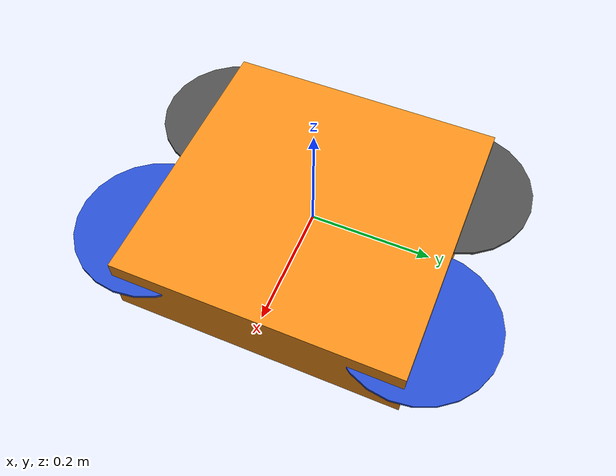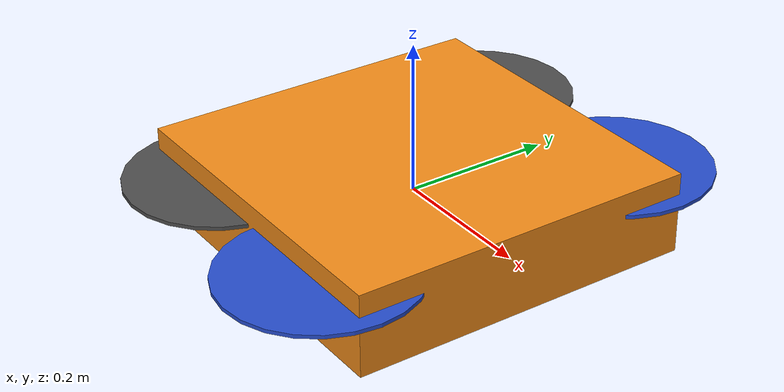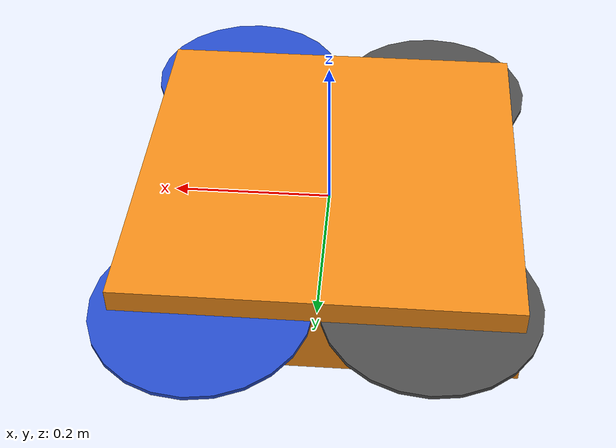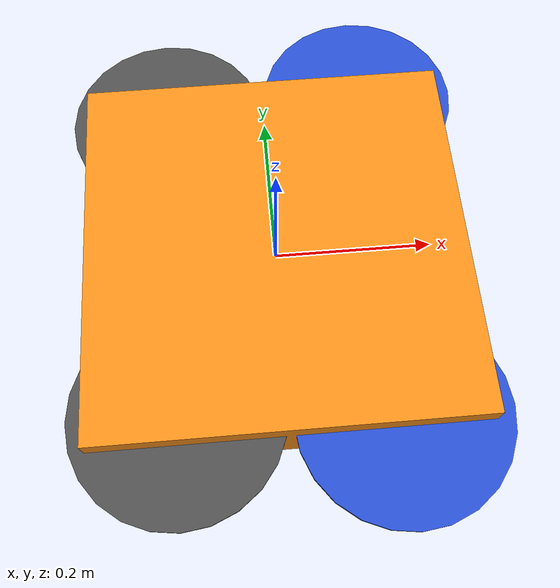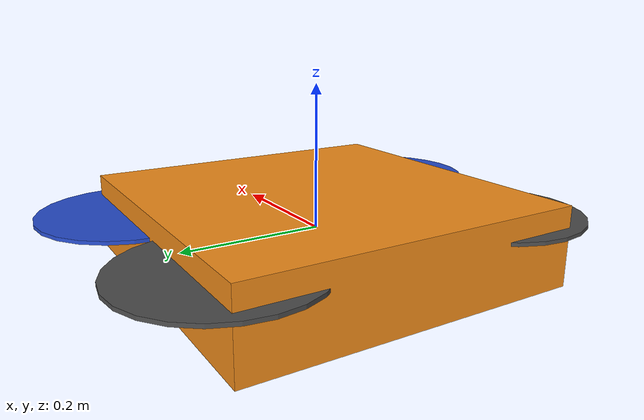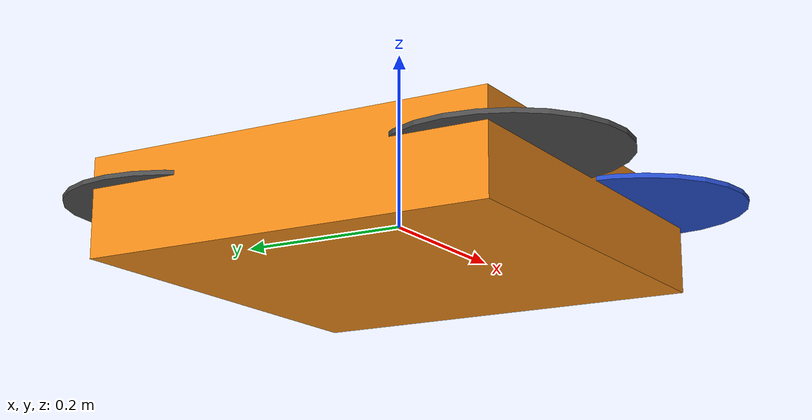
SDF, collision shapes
<sdf version='1.6'>
  <model name='iris'>
    <link name='base_link'>
      <pose frame=''>0 0 0 0 -0 0</pose>
      <inertial>
        <pose frame=''>0 0 0 0 -0 0</pose>
        <mass>1.5</mass>
        <inertia>
          <ixx>0.029125</ixx>
          <ixy>0</ixy>
          <ixz>0</ixz>
          <iyy>0.029125</iyy>
          <iyz>0</iyz>
          <izz>0.055225</izz>
        </inertia>
      </inertial>
      <collision name='base_link_inertia_collision'>
        <pose frame=''>0 0 0 0 -0 0</pose>
        <geometry>
          <box>
            <size>0.47 0.47 0.11</size>
          </box>
        </geometry>
        <surface>
          <contact>
            <ode>
              <min_depth>0.001</min_depth>
              <max_vel>0</max_vel>
            </ode>
          </contact>
          <friction>
            <ode/>
          </friction>
        </surface>
      </collision>
      <visual name='base_link_inertia_visual'>
        <pose frame=''>0 0 0 0 -0 0</pose>
        <geometry>
          <mesh>
            <scale>1 1 1</scale>
            <uri>model://rotors_description/meshes/iris.stl</uri>
          </mesh>
        </geometry>
        <material>
          <script>
            <name>Gazebo/Orange</name>
            <uri>file://media/materials/scripts/gazebo.material</uri>
          </script>
        </material>
      </visual>
      <gravity>1</gravity>
      <velocity_decay/>
    </link>
    <link name='/imu_link'>
      <pose frame=''>0 0 0 0 -0 0</pose>
      <inertial>
        <pose frame=''>0 0 0 0 -0 0</pose>
        <mass>0.015</mass>
        <inertia>
          <ixx>1e-05</ixx>
          <ixy>0</ixy>
          <ixz>0</ixz>
          <iyy>1e-05</iyy>
          <iyz>0</iyz>
          <izz>1e-05</izz>
        </inertia>
      </inertial>
    </link>
    <joint name='/imu_joint' type='revolute'>
      <child>/imu_link</child>
      <parent>base_link</parent>
      <axis>
        <xyz>1 0 0</xyz>
        <limit>
          <lower>0</lower>
          <upper>0</upper>
          <effort>0</effort>
          <velocity>0</velocity>
        </limit>
        <dynamics>
          <spring_reference>0</spring_reference>
          <spring_stiffness>0</spring_stiffness>
        </dynamics>
        <use_parent_model_frame>1</use_parent_model_frame>
      </axis>
    </joint>
    <link name='rotor_0'>
      <pose frame=''>0.13 -0.22 0.023 0 -0 0</pose>
      <inertial>
        <pose frame=''>0 0 0 0 -0 0</pose>
        <mass>0.005</mass>
        <inertia>
          <ixx>9.75e-07</ixx>
          <ixy>0</ixy>
          <ixz>0</ixz>
          <iyy>0.000273104</iyy>
          <iyz>0</iyz>
          <izz>0.000274004</izz>
        </inertia>
      </inertial>
      <collision name='rotor_0_collision'>
        <pose frame=''>0 0 0 0 -0 0</pose>
        <geometry>
          <cylinder>
            <length>0.005</length>
            <radius>0.128</radius>
          </cylinder>
        </geometry>
        <surface>
          <contact>
            <ode/>
          </contact>
          <friction>
            <ode/>
          </friction>
        </surface>
      </collision>
      <visual name='rotor_0_visual'>
        <pose frame=''>0 0 0 0 -0 0</pose>
        <geometry>
          <mesh>
            <scale>1 1 1</scale>
            <uri>model://rotors_description/meshes/iris_prop_ccw.dae</uri>
          </mesh>
        </geometry>
        <material>
          <script>
            <name>Gazebo/Blue</name>
            <uri>file://media/materials/scripts/gazebo.material</uri>
          </script>
        </material>
      </visual>
      <gravity>1</gravity>
      <velocity_decay/>
    </link>
    <joint name='rotor_0_joint' type='revolute'>
      <child>rotor_0</child>
      <parent>base_link</parent>
      <axis>
        <xyz>0 0 1</xyz>
        <limit>
          <lower>-1e+16</lower>
          <upper>1e+16</upper>
        </limit>
        <dynamics>
          <spring_reference>0</spring_reference>
          <spring_stiffness>0</spring_stiffness>
        </dynamics>
        <use_parent_model_frame>1</use_parent_model_frame>
      </axis>
    </joint>
    <link name='rotor_1'>
      <pose frame=''>-0.13 0.2 0.023 0 -0 0</pose>
      <inertial>
        <pose frame=''>0 0 0 0 -0 0</pose>
        <mass>0.005</mass>
        <inertia>
          <ixx>9.75e-07</ixx>
          <ixy>0</ixy>
          <ixz>0</ixz>
          <iyy>0.000273104</iyy>
          <iyz>0</iyz>
          <izz>0.000274004</izz>
        </inertia>
      </inertial>
      <collision name='rotor_1_collision'>
        <pose frame=''>0 0 0 0 -0 0</pose>
        <geometry>
          <cylinder>
            <length>0.005</length>
            <radius>0.128</radius>
          </cylinder>
        </geometry>
        <surface>
          <contact>
            <ode/>
          </contact>
          <friction>
            <ode/>
          </friction>
        </surface>
      </collision>
      <visual name='rotor_1_visual'>
        <pose frame=''>0 0 0 0 -0 0</pose>
        <geometry>
          <mesh>
            <scale>1 1 1</scale>
            <uri>model://rotors_description/meshes/iris_prop_ccw.dae</uri>
          </mesh>
        </geometry>
        <material>
          <script>
            <name>Gazebo/DarkGrey</name>
            <uri>file://media/materials/scripts/gazebo.material</uri>
          </script>
        </material>
      </visual>
      <gravity>1</gravity>
      <velocity_decay/>
    </link>
    <joint name='rotor_1_joint' type='revolute'>
      <child>rotor_1</child>
      <parent>base_link</parent>
      <axis>
        <xyz>0 0 1</xyz>
        <limit>
          <lower>-1e+16</lower>
          <upper>1e+16</upper>
        </limit>
        <dynamics>
          <spring_reference>0</spring_reference>
          <spring_stiffness>0</spring_stiffness>
        </dynamics>
        <use_parent_model_frame>1</use_parent_model_frame>
      </axis>
    </joint>
    <link name='rotor_2'>
      <pose frame=''>0.13 0.22 0.023 0 -0 0</pose>
      <inertial>
        <pose frame=''>0 0 0 0 -0 0</pose>
        <mass>0.005</mass>
        <inertia>
          <ixx>9.75e-07</ixx>
          <ixy>0</ixy>
          <ixz>0</ixz>
          <iyy>0.000273104</iyy>
          <iyz>0</iyz>
          <izz>0.000274004</izz>
        </inertia>
      </inertial>
      <collision name='rotor_2_collision'>
        <pose frame=''>0 0 0 0 -0 0</pose>
        <geometry>
          <cylinder>
            <length>0.005</length>
            <radius>0.128</radius>
          </cylinder>
        </geometry>
        <surface>
          <contact>
            <ode/>
          </contact>
          <friction>
            <ode/>
          </friction>
        </surface>
      </collision>
      <visual name='rotor_2_visual'>
        <pose frame=''>0 0 0 0 -0 0</pose>
        <geometry>
          <mesh>
            <scale>1 1 1</scale>
            <uri>model://rotors_description/meshes/iris_prop_cw.dae</uri>
          </mesh>
        </geometry>
        <material>
          <script>
            <name>Gazebo/Blue</name>
            <uri>file://media/materials/scripts/gazebo.material</uri>
          </script>
        </material>
      </visual>
      <gravity>1</gravity>
      <velocity_decay/>
    </link>
    <joint name='rotor_2_joint' type='revolute'>
      <child>rotor_2</child>
      <parent>base_link</parent>
      <axis>
        <xyz>0 0 1</xyz>
        <limit>
          <lower>-1e+16</lower>
          <upper>1e+16</upper>
        </limit>
        <dynamics>
          <spring_reference>0</spring_reference>
          <spring_stiffness>0</spring_stiffness>
        </dynamics>
        <use_parent_model_frame>1</use_parent_model_frame>
      </axis>
    </joint>
    <link name='rotor_3'>
      <pose frame=''>-0.13 -0.2 0.023 0 -0 0</pose>
      <inertial>
        <pose frame=''>0 0 0 0 -0 0</pose>
        <mass>0.005</mass>
        <inertia>
          <ixx>9.75e-07</ixx>
          <ixy>0</ixy>
          <ixz>0</ixz>
          <iyy>0.000273104</iyy>
          <iyz>0</iyz>
          <izz>0.000274004</izz>
        </inertia>
      </inertial>
      <collision name='rotor_3_collision'>
        <pose frame=''>0 0 0 0 -0 0</pose>
        <geometry>
          <cylinder>
            <length>0.005</length>
            <radius>0.128</radius>
          </cylinder>
        </geometry>
        <surface>
          <contact>
            <ode/>
          </contact>
          <friction>
            <ode/>
          </friction>
        </surface>
      </collision>
      <visual name='rotor_3_visual'>
        <pose frame=''>0 0 0 0 -0 0</pose>
        <geometry>
          <mesh>
            <scale>1 1 1</scale>
            <uri>model://rotors_description/meshes/iris_prop_cw.dae</uri>
          </mesh>
        </geometry>
        <material>
          <script>
            <name>Gazebo/DarkGrey</name>
            <uri>file://media/materials/scripts/gazebo.material</uri>
          </script>
        </material>
      </visual>
      <gravity>1</gravity>
      <velocity_decay/>
    </link>
    <joint name='rotor_3_joint' type='revolute'>
      <child>rotor_3</child>
      <parent>base_link</parent>
      <axis>
        <xyz>0 0 1</xyz>
        <limit>
          <lower>-1e+16</lower>
          <upper>1e+16</upper>
        </limit>
        <dynamics>
          <spring_reference>0</spring_reference>
          <spring_stiffness>0</spring_stiffness>
        </dynamics>
        <use_parent_model_frame>1</use_parent_model_frame>
      </axis>
    </joint>
    <plugin name='rosbag' filename='libgazebo_multirotor_base_plugin.so'>
      <robotNamespace/>
      <linkName>base_link</linkName>
      <rotorVelocitySlowdownSim>10</rotorVelocitySlowdownSim>
    </plugin>
    <plugin name='front_right_motor_model' filename='libgazebo_motor_model.so'>
      <robotNamespace/>
      <jointName>rotor_0_joint</jointName>
      <linkName>rotor_0</linkName>
      <turningDirection>ccw</turningDirection>
      <timeConstantUp>0.0125</timeConstantUp>
      <timeConstantDown>0.025</timeConstantDown>
      <maxRotVelocity>1100</maxRotVelocity>
      <motorConstant>8.54858e-06</motorConstant>
      <momentConstant>0.06</momentConstant>
      <commandSubTopic>/gazebo/command/motor_speed</commandSubTopic>
      <motorNumber>0</motorNumber>
      <rotorDragCoefficient>0.000806428</rotorDragCoefficient>
      <rollingMomentCoefficient>1e-06</rollingMomentCoefficient>
      <motorSpeedPubTopic>/motor_speed/0</motorSpeedPubTopic>
      <rotorVelocitySlowdownSim>10</rotorVelocitySlowdownSim>
    </plugin>
    <plugin name='back_left_motor_model' filename='libgazebo_motor_model.so'>
      <robotNamespace/>
      <jointName>rotor_1_joint</jointName>
      <linkName>rotor_1</linkName>
      <turningDirection>ccw</turningDirection>
      <timeConstantUp>0.0125</timeConstantUp>
      <timeConstantDown>0.025</timeConstantDown>
      <maxRotVelocity>1100</maxRotVelocity>
      <motorConstant>8.54858e-06</motorConstant>
      <momentConstant>0.06</momentConstant>
      <commandSubTopic>/gazebo/command/motor_speed</commandSubTopic>
      <motorNumber>1</motorNumber>
      <rotorDragCoefficient>0.000806428</rotorDragCoefficient>
      <rollingMomentCoefficient>1e-06</rollingMomentCoefficient>
      <motorSpeedPubTopic>/motor_speed/1</motorSpeedPubTopic>
      <rotorVelocitySlowdownSim>10</rotorVelocitySlowdownSim>
    </plugin>
    <plugin name='front_left_motor_model' filename='libgazebo_motor_model.so'>
      <robotNamespace/>
      <jointName>rotor_2_joint</jointName>
      <linkName>rotor_2</linkName>
      <turningDirection>cw</turningDirection>
      <timeConstantUp>0.0125</timeConstantUp>
      <timeConstantDown>0.025</timeConstantDown>
      <maxRotVelocity>1100</maxRotVelocity>
      <motorConstant>8.54858e-06</motorConstant>
      <momentConstant>0.06</momentConstant>
      <commandSubTopic>/gazebo/command/motor_speed</commandSubTopic>
      <motorNumber>2</motorNumber>
      <rotorDragCoefficient>0.000806428</rotorDragCoefficient>
      <rollingMomentCoefficient>1e-06</rollingMomentCoefficient>
      <motorSpeedPubTopic>/motor_speed/2</motorSpeedPubTopic>
      <rotorVelocitySlowdownSim>10</rotorVelocitySlowdownSim>
    </plugin>
    <plugin name='back_right_motor_model' filename='libgazebo_motor_model.so'>
      <robotNamespace/>
      <jointName>rotor_3_joint</jointName>
      <linkName>rotor_3</linkName>
      <turningDirection>cw</turningDirection>
      <timeConstantUp>0.0125</timeConstantUp>
      <timeConstantDown>0.025</timeConstantDown>
      <maxRotVelocity>1100</maxRotVelocity>
      <motorConstant>8.54858e-06</motorConstant>
      <momentConstant>0.06</momentConstant>
      <commandSubTopic>/gazebo/command/motor_speed</commandSubTopic>
      <motorNumber>3</motorNumber>
      <rotorDragCoefficient>0.000806428</rotorDragCoefficient>
      <rollingMomentCoefficient>1e-06</rollingMomentCoefficient>
      <motorSpeedPubTopic>/motor_speed/3</motorSpeedPubTopic>
      <rotorVelocitySlowdownSim>10</rotorVelocitySlowdownSim>
    </plugin>
    <plugin name='gps_plugin' filename='libgazebo_gps_plugin.so'>
      <robotNamespace/>
      <gpsNoise>1</gpsNoise>
    </plugin>
    <plugin name='magnetometer_plugin' filename='libgazebo_magnetometer_plugin.so'>
      <robotNamespace/>
      <pubRate>20</pubRate>
      <noiseDensity>0.0004</noiseDensity>
      <randomWalk>6.4e-06</randomWalk>
      <biasCorrelationTime>600</biasCorrelationTime>
      <magTopic>/mag</magTopic>
    </plugin>
    <plugin name='barometer_plugin' filename='libgazebo_barometer_plugin.so'>
      <robotNamespace/>
      <pubRate>10</pubRate>
      <baroTopic>/baro</baroTopic>
    </plugin>
    <plugin name='mavlink_interface' filename='libgazebo_mavlink_interface.so'>
      <robotNamespace/>
      <imuSubTopic>/imu</imuSubTopic>
      <gpsSubTopic>/gps</gpsSubTopic>
      <magSubTopic>/mag</magSubTopic>
      <baroSubTopic>/baro</baroSubTopic>
      <mavlink_addr>INADDR_ANY</mavlink_addr>
      <mavlink_udp_port>14560</mavlink_udp_port>
      <mavlink_tcp_port>4560</mavlink_tcp_port>
      <serialEnabled>0</serialEnabled>
      <serialDevice>/dev/ttyACM0</serialDevice>
      <baudRate>921600</baudRate>
      <qgc_addr>INADDR_ANY</qgc_addr>
      <qgc_udp_port>14550</qgc_udp_port>
      <sdk_addr>INADDR_ANY</sdk_addr>
      <sdk_udp_port>14540</sdk_udp_port>
      <hil_mode>0</hil_mode>
      <hil_state_level>0</hil_state_level>
      <vehicle_is_tailsitter>0</vehicle_is_tailsitter>
      <send_vision_estimation>1</send_vision_estimation>
      <send_odometry>0</send_odometry>
      <enable_lockstep>1</enable_lockstep>
      <use_tcp>1</use_tcp>
      <motorSpeedCommandPubTopic>/gazebo/command/motor_speed</motorSpeedCommandPubTopic>
      <control_channels>
        <channel name='rotor1'>
          <input_index>0</input_index>
          <input_offset>0</input_offset>
          <input_scaling>1000</input_scaling>
          <zero_position_disarmed>0</zero_position_disarmed>
          <zero_position_armed>100</zero_position_armed>
          <joint_control_type>velocity</joint_control_type>
        </channel>
        <channel name='rotor2'>
          <input_index>1</input_index>
          <input_offset>0</input_offset>
          <input_scaling>1000</input_scaling>
          <zero_position_disarmed>0</zero_position_disarmed>
          <zero_position_armed>100</zero_position_armed>
          <joint_control_type>velocity</joint_control_type>
        </channel>
        <channel name='rotor3'>
          <input_index>2</input_index>
          <input_offset>0</input_offset>
          <input_scaling>1000</input_scaling>
          <zero_position_disarmed>0</zero_position_disarmed>
          <zero_position_armed>100</zero_position_armed>
          <joint_control_type>velocity</joint_control_type>
        </channel>
        <channel name='rotor4'>
          <input_index>3</input_index>
          <input_offset>0</input_offset>
          <input_scaling>1000</input_scaling>
          <zero_position_disarmed>0</zero_position_disarmed>
          <zero_position_armed>100</zero_position_armed>
          <joint_control_type>velocity</joint_control_type>
        </channel>
        <channel name='rotor5'>
          <input_index>4</input_index>
          <input_offset>1</input_offset>
          <input_scaling>324.6</input_scaling>
          <zero_position_disarmed>0</zero_position_disarmed>
          <zero_position_armed>0</zero_position_armed>
          <joint_control_type>velocity</joint_control_type>
          <joint_control_pid>
            <p>0.1</p>
            <i>0</i>
            <d>0</d>
            <iMax>0.0</iMax>
            <iMin>0.0</iMin>
            <cmdMax>2</cmdMax>
            <cmdMin>-2</cmdMin>
          </joint_control_pid>
          <joint_name>zephyr_delta_wing::propeller_joint</joint_name>
        </channel>
        <channel name='rotor6'>
          <input_index>5</input_index>
          <input_offset>0</input_offset>
          <input_scaling>0.524</input_scaling>
          <zero_position_disarmed>0</zero_position_disarmed>
          <zero_position_armed>0</zero_position_armed>
          <joint_control_type>position</joint_control_type>
          <joint_name>zephyr_delta_wing::flap_left_joint</joint_name>
          <joint_control_pid>
            <p>10.0</p>
            <i>0</i>
            <d>0</d>
            <iMax>0</iMax>
            <iMin>0</iMin>
            <cmdMax>20</cmdMax>
            <cmdMin>-20</cmdMin>
          </joint_control_pid>
        </channel>
        <channel name='rotor7'>
          <input_index>6</input_index>
          <input_offset>0</input_offset>
          <input_scaling>0.524</input_scaling>
          <zero_position_disarmed>0</zero_position_disarmed>
          <zero_position_armed>0</zero_position_armed>
          <joint_control_type>position</joint_control_type>
          <joint_name>zephyr_delta_wing::flap_right_joint</joint_name>
          <joint_control_pid>
            <p>10.0</p>
            <i>0</i>
            <d>0</d>
            <iMax>0</iMax>
            <iMin>0</iMin>
            <cmdMax>20</cmdMax>
            <cmdMin>-20</cmdMin>
          </joint_control_pid>
        </channel>
        <channel name='rotor8'>
          <input_index>7</input_index>
          <input_offset>0</input_offset>
          <input_scaling>0.524</input_scaling>
          <zero_position_disarmed>0</zero_position_disarmed>
          <zero_position_armed>0</zero_position_armed>
          <joint_control_type>position</joint_control_type>
        </channel>
      </control_channels>
    </plugin>
    <static>0</static>
    <plugin name='rotors_gazebo_imu_plugin' filename='libgazebo_imu_plugin.so'>
      <robotNamespace/>
      <linkName>/imu_link</linkName>
      <imuTopic>/imu</imuTopic>
      <gyroscopeNoiseDensity>0.0003394</gyroscopeNoiseDensity>
      <gyroscopeRandomWalk>3.8785e-05</gyroscopeRandomWalk>
      <gyroscopeBiasCorrelationTime>1000.0</gyroscopeBiasCorrelationTime>
      <gyroscopeTurnOnBiasSigma>0.0087</gyroscopeTurnOnBiasSigma>
      <accelerometerNoiseDensity>0.004</accelerometerNoiseDensity>
      <accelerometerRandomWalk>0.006</accelerometerRandomWalk>
      <accelerometerBiasCorrelationTime>300.0</accelerometerBiasCorrelationTime>
      <accelerometerTurnOnBiasSigma>0.196</accelerometerTurnOnBiasSigma>
    </plugin>

    <include>
      <uri>model://r200</uri>
      <pose frame=''>0.1 0 0 0 0 0</pose>
    </include>

    <joint name="intel_camera_joint" type="revolute">
      <child>r200::link</child>
      <parent>base_link</parent>
        <axis>
        <xyz>0 0 1</xyz>
        <limit>
          <lower>0</lower>
          <upper>0</upper>
        </limit>
        <use_parent_model_frame>1</use_parent_model_frame>
      </axis>
    </joint>

    <include>
      <uri>model://c920_1</uri>
      <pose>0 0 -0.04 0 1.57 0</pose>
    </include>
    <joint name="c920_1_joint" type="fixed">
      <child>c920_1::link_1</child>
      <parent>base_link</parent>
      <axis>
        <xyz>0 0 1</xyz>
        <limit>
          <upper>0</upper>
          <lower>0</lower>
        </limit>
      </axis>
    </joint>

  </model>
</sdf>

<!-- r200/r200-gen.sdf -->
<sdf version="1.5">

  <model name="r200">

    <link name="link">
    <pose frame=''>0 0 0 0 -0 0</pose>
      <inertial>
        <mass>0.05</mass>
        <inertia>
          <ixx>4.16666666667e-06</ixx>
          <iyy>5.20833333333e-07</iyy>
          <izz>3.85416666667e-06</izz>
        </inertia>
      </inertial>

      <visual name="visual">
      <pose frame=''>0 0 0 0 -0 0</pose>
        <geometry>
          <box>
            <size>0.005 0.03 0.01</size>
          </box>
        </geometry>
      </visual>

      <collision name="collision">
        <geometry>
          <box>
            <size>0.005 0.03 0.01</size>
          </box>
        </geometry>
      </collision>

      <sensor type="depth" name="r200_sensor">
        <always_on>true</always_on>
        <update_rate>3.0</update_rate>
        <visualize>true</visualize>
        <camera name="head">
          <horizontal_fov>1.3962634</horizontal_fov>
          <image>
            <width>640</width>
            <height>480</height>
            <format>R8G8B8</format>
          </image>
          <depth_camera>
            <output>1</output>
          </depth_camera>
          <clip>
            <near>0.02</near>
            <far>300</far>
          </clip>
          <noise>
            <type>gaussian</type>
            <!-- Noise is sampled independently per pixel on each frame.
                 That pixel's noise value is added to each of its color
                 channels, which at that point lie in the range [0,1]. -->
            <mean>0.0</mean>
            <stddev>0.007</stddev>
          </noise>
        </camera>

        <plugin name="r200_controller" filename="libgazebo_ros_openni_kinect.so">
          <robotNamespace/>
          <baseline>0.2</baseline>
          <alwaysOn>true</alwaysOn>
          <updateRate>1.0</updateRate>
          <cameraName>r200_ir</cameraName>
          <frameName>r200</frameName>
          <pointCloudCutoff>0.5</pointCloudCutoff>
          <distortionK1>0.00000001</distortionK1>
          <distortionK2>0.00000001</distortionK2>
          <distortionK3>0.00000001</distortionK3>
          <distortionT1>0.00000001</distortionT1>
          <distortionT2>0.00000001</distortionT2>
          <CxPrime>0</CxPrime>
          <Cx>0</Cx>
          <Cy>0</Cy>
          <focalLength>0</focalLength>
          <hackBaseline>0</hackBaseline>
        </plugin>
        <visualize>true</visualize>
      </sensor>
    </link>
  </model>

</sdf>

<!-- vim: set et ft=xml fenc=utf-8 ff=unix sts=0 sw=2 ts=2 : -->

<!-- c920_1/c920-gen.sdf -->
<sdf version="1.5">

  <model name="c920_1">

    <link name="link_1">

      <inertial>
        <mass>0.05</mass>
        <inertia>
          <ixx>4.16666666667e-06</ixx>
          <iyy>5.20833333333e-07</iyy>
          <izz>3.85416666667e-06</izz>
        </inertia>
      </inertial>

      <visual name="visual">
        <geometry>
          <box>
            <size>0.005 0.03 0.01</size>
          </box>
        </geometry>
      </visual>

      <collision name="collision">
        <geometry>
          <box>
            <size>0.005 0.03 0.01</size>
          </box>
        </geometry>
      </collision>

      <sensor type="camera" name="c920_sensor">
        <always_on>true</always_on>
        <update_rate>30.0</update_rate>
        <camera name="head">
          <horizontal_fov>1.229</horizontal_fov>
          <image>
            <width>1920</width>
            <height>1080</height>
            <format>R8G8B8</format>
          </image>
          <clip>
            <near>0.02</near>
            <far>10</far>
          </clip>
          <lens>
            <type>gnomonical</type>
            <scale_to_hfov>1</scale_to_hfov>
          </lens>
          <noise>
            <type>gaussian</type>
            <!-- Noise is sampled independently per pixel on each frame.
                 That pixel's noise value is added to each of its color
                 channels, which at that point lie in the range [0,1]. -->
            <mean>0.0</mean>
            <stddev>0.007</stddev>
          </noise>
        </camera>
        <plugin name="camera_controller" filename="libgazebo_ros_camera.so">
          <robotNamespace></robotNamespace>
          <cameraName>c920</cameraName>
          <imageTopicName>image_raw</imageTopicName>
          <cameraInfoTopicName>camera_info</cameraInfoTopicName>
          <frameName>camera_link</frameName>
          <hackBaseline>0.07</hackBaseline>
          <distortionK1>0.0</distortionK1>
          <distortionK2>0.0</distortionK2>
          <distortionK3>0.0</distortionK3>
          <distortionT1>0.0</distortionT1>
          <distortionT2>0.0</distortionT2>
        </plugin>
        <visualize>true</visualize>
      </sensor>
    </link>
  </model>

</sdf>

<!-- vim: set et ft=xml fenc=utf-8 ff=unix sts=0 sw=2 ts=2 : -->
